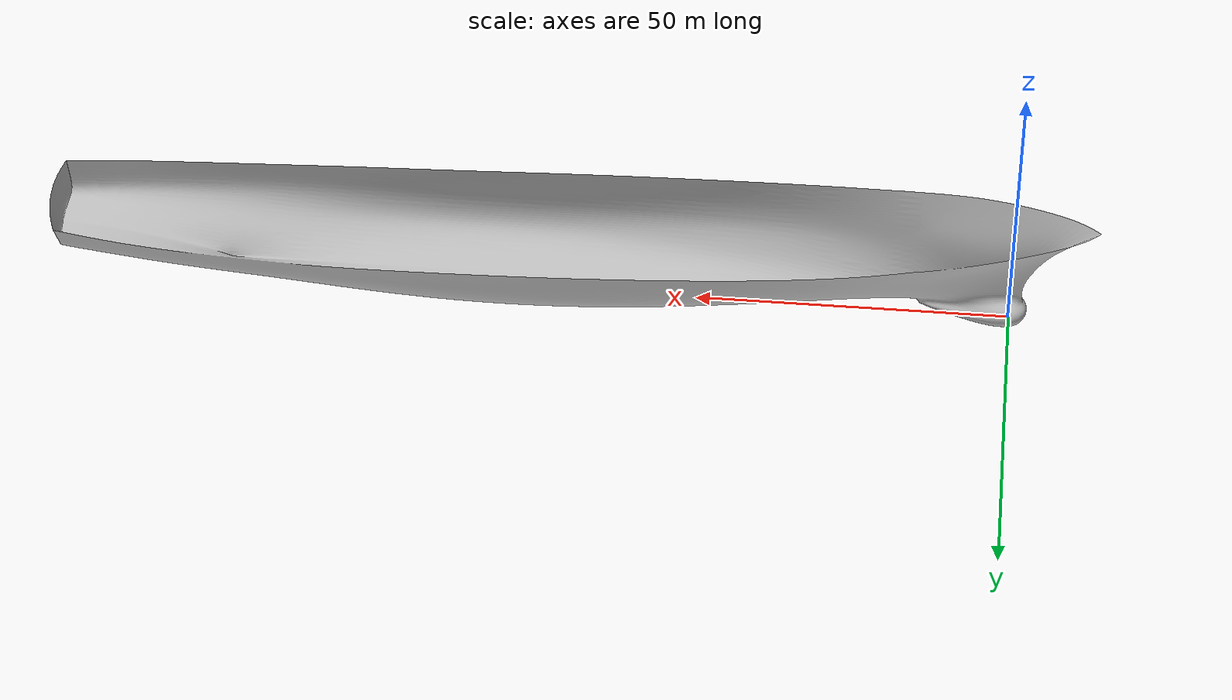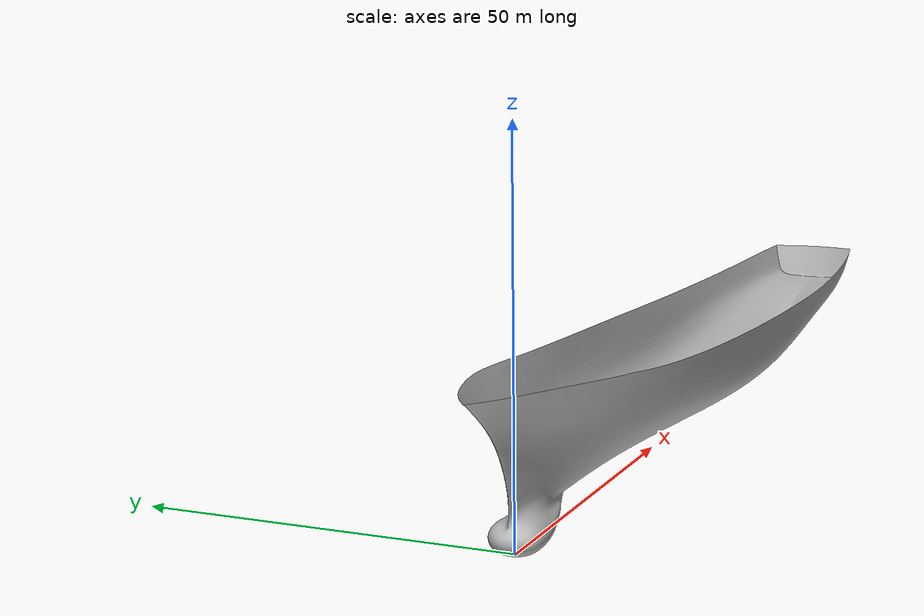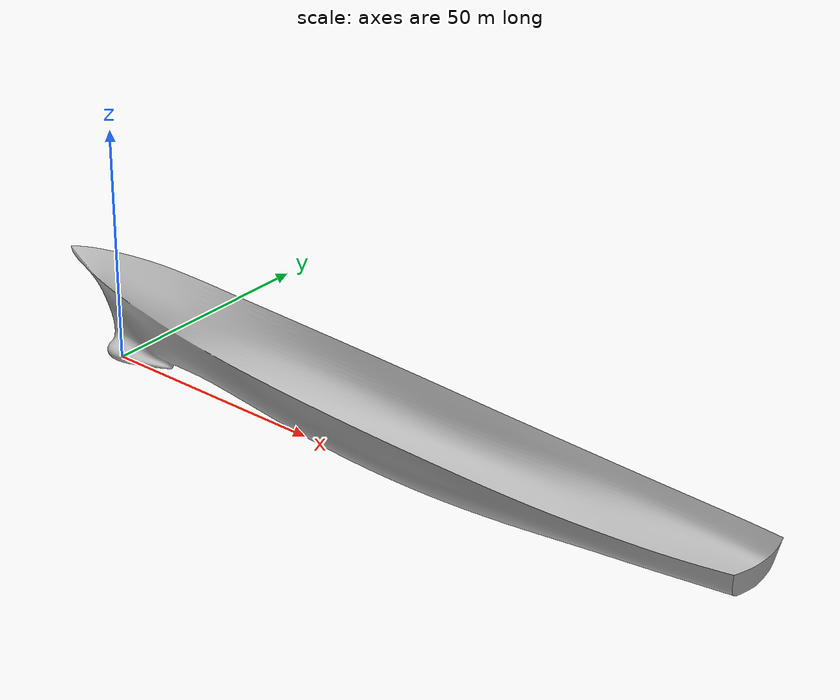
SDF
<?xml version="1.0"?>
<sdf version="1.7">
    <model name='wamv'>
        <link name="base_link">
            <visual name="visual">
                <geometry>
                    <mesh>
                        <uri>model://5415_hull/5415_hull.stl</uri>
                    </mesh>
                </geometry>
            </visual>
        </link>
    </model>
</sdf>
